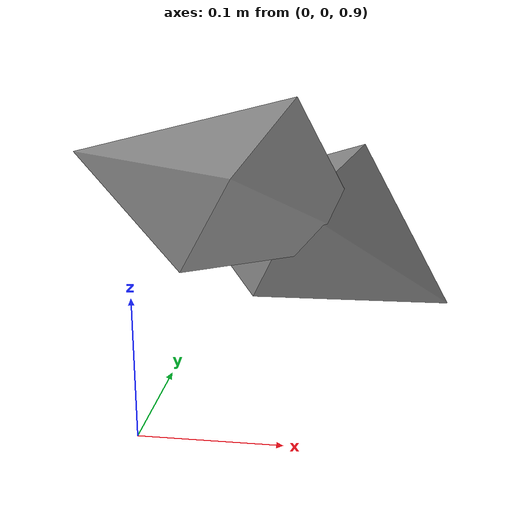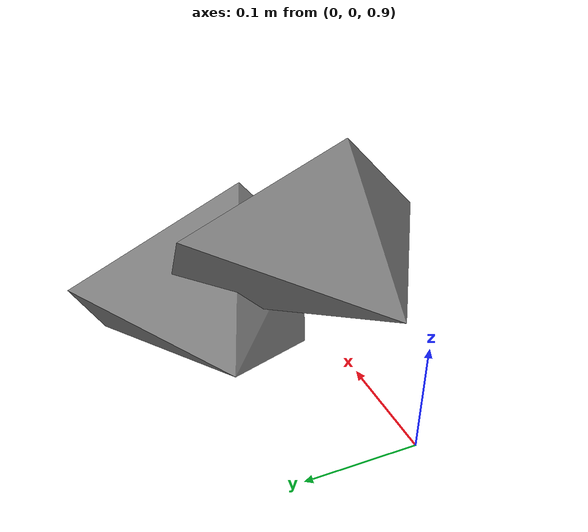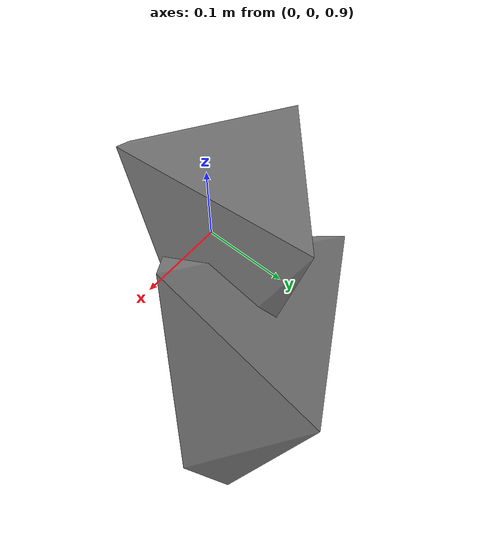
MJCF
<mujoco model="mesh_tumble">
  <option timestep="0.002" gravity="0 0 -9.81"/>
  <asset>
    <!-- asymmetric convex point cloud, center of mass off the origin. Coordinates
         are exact in f32 because MuJoCo stores mesh vertices as float. -->
    <mesh name="rock" vertex="0 0 0  0.1875 0 0  0 0.125 0  0 0 0.078125  0.15625 0.09375 0.046875  0.046875 0.015625 0.125  0.171875 -0.03125 0.015625"/>
  </asset>
  <worldbody>
    <body name="rock" pos="0 0 1" euler="10 25 40">
      <freejoint/>
      <geom type="mesh" mesh="rock" pos="0.02 -0.01 0.03" euler="5 0 15" contype="0" conaffinity="0"/>
      <body name="arm" pos="0.1 0 0">
        <joint type="hinge" axis="0 1 0" damping="0.01"/>
        <geom type="mesh" mesh="rock" density="300" contype="0" conaffinity="0"/>
      </body>
    </body>
  </worldbody>
</mujoco>
